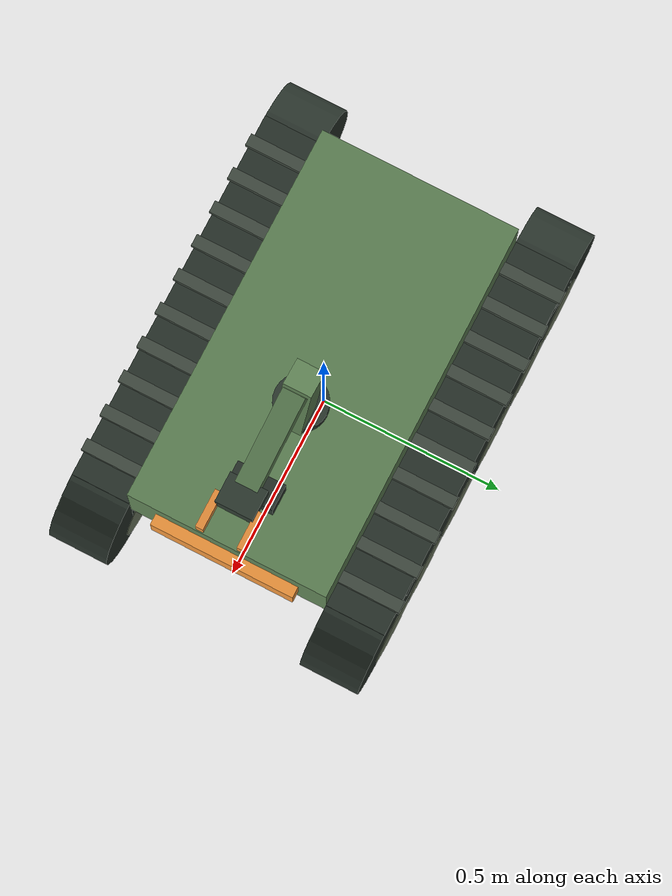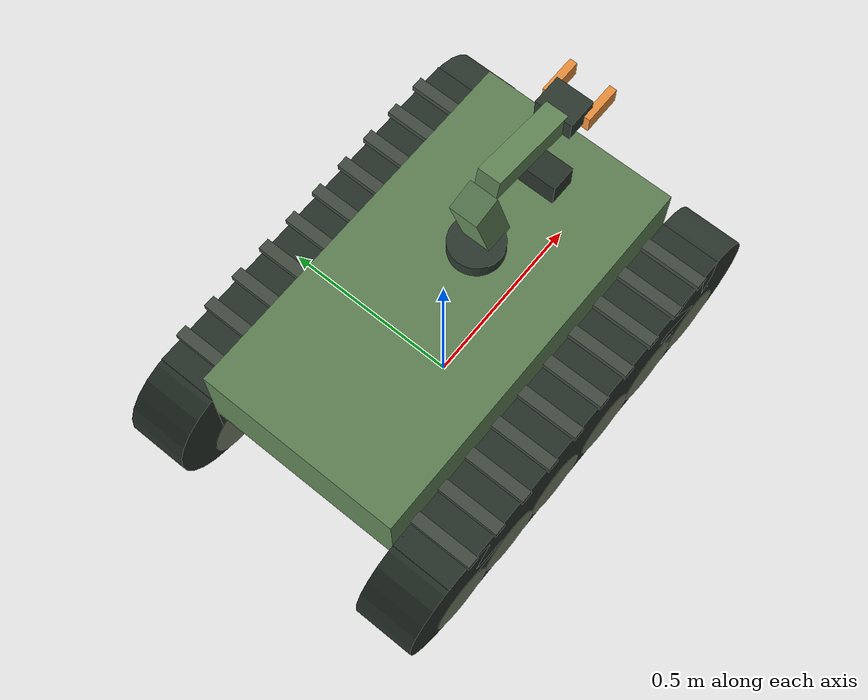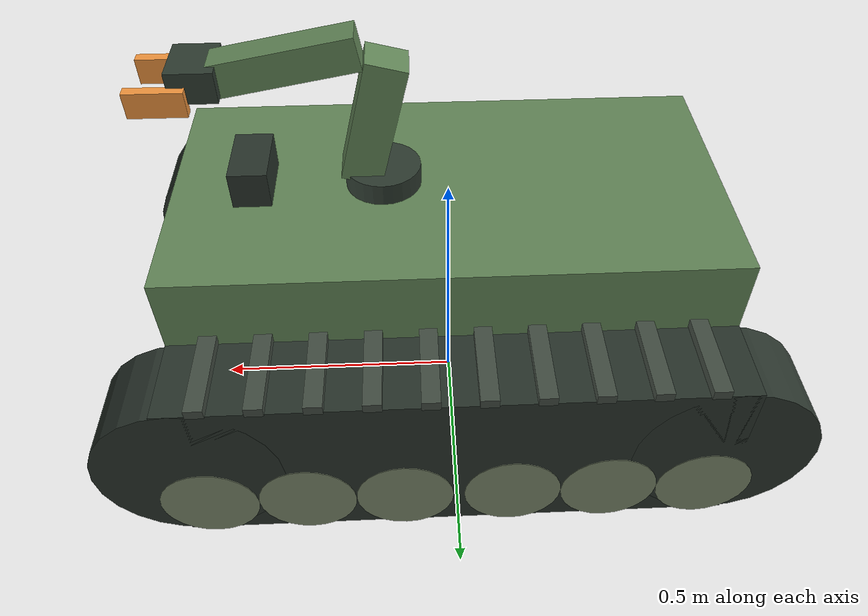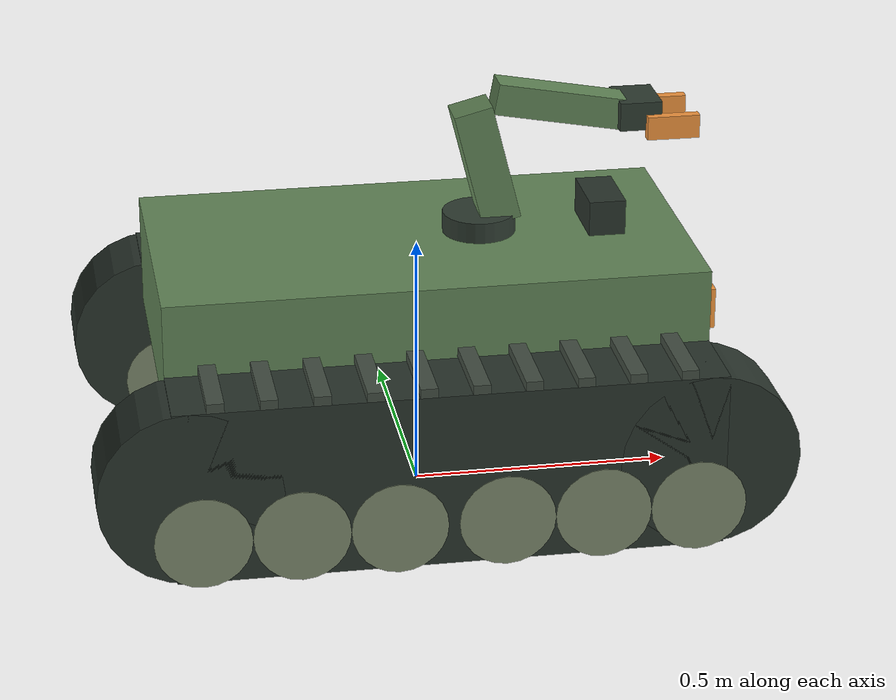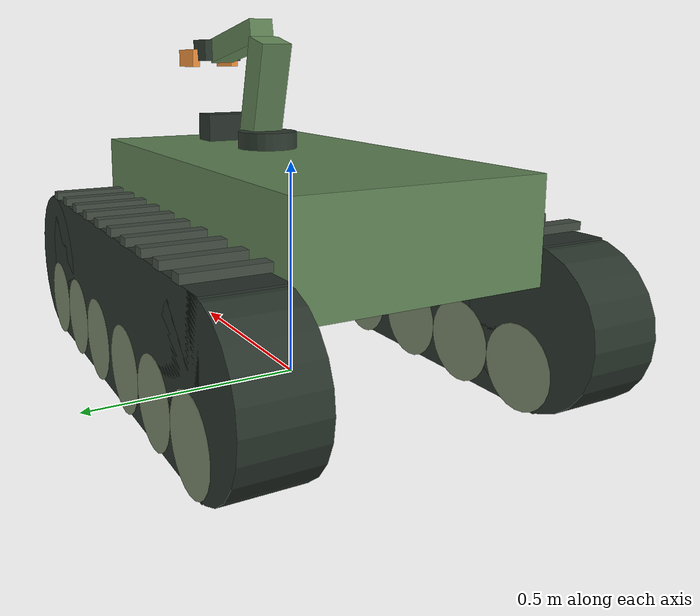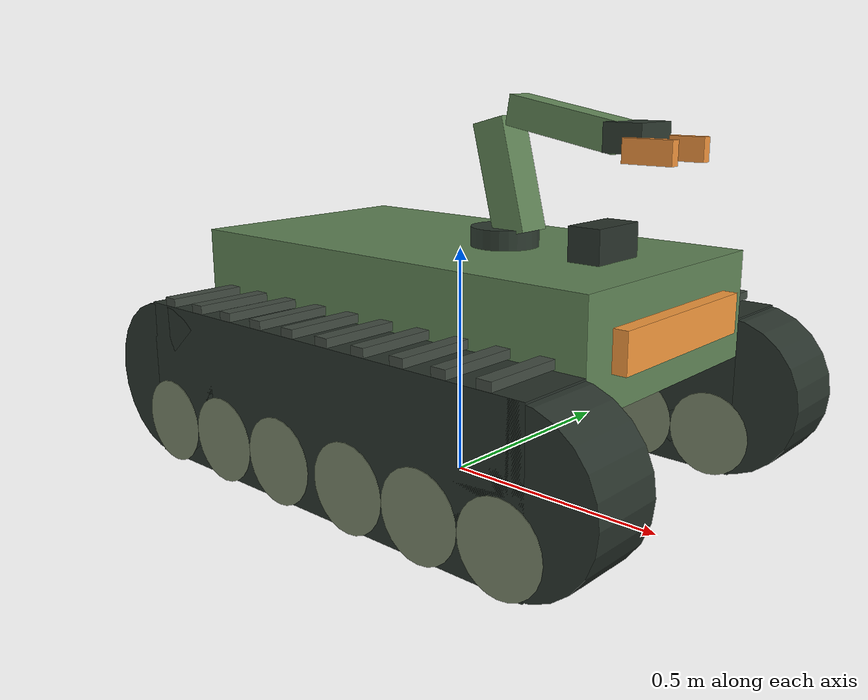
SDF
<?xml version='1.0' encoding='utf-8'?>
<sdf version="1.10">
  <model name="robot">
    <static>false</static>
    <link name="base_link">
      <inertial>
        <mass>48.4</mass>
        <pose>0 0 0.37 0 0 0</pose>
        <inertia>
          <ixx>1.3713333333333333</ixx>
          <iyy>4.391493333333333</iyy>
          <izz>5.3724</izz>
        </inertia>
      </inertial>
      <collision name="body_collision">
        <pose>0 0 0.41 0 0 0</pose>
        <geometry>
          <box>
            <size>0.8 0.46 0.18</size>
          </box>
        </geometry>
        <surface>
          <friction>
            <ode>
              <mu>0.6</mu>
              <mu2>0.6</mu2>
            </ode>
          </friction>
        </surface>
      </collision>
      <visual name="body">
        <pose>0 0 0.41 0 0 0</pose>
        <geometry>
          <box>
            <size>1.02 0.54 0.22</size>
          </box>
        </geometry>
        <material>
          <diffuse>0.38 0.52 0.34 1</diffuse>
        </material>
      </visual>
      <visual name="front_marker">
        <pose>0.52 0 0.41 0 0 0</pose>
        <geometry>
          <box>
            <size>0.04 0.38880000000000003 0.08</size>
          </box>
        </geometry>
        <material>
          <diffuse>0.96 0.6 0.24 1</diffuse>
        </material>
      </visual>
      <visual name="camera">
        <pose>0.357 0 0.5529999999999999 0 0 0</pose>
        <geometry>
          <box>
            <size>0.07 0.13 0.07</size>
          </box>
        </geometry>
        <material>
          <diffuse>0.16 0.2 0.17 1</diffuse>
        </material>
      </visual>
      <visual name="left_track_envelope">
        <pose>0 0.35 0.21 0 0 0</pose>
        <geometry>
          <box>
            <size>1.02 0.16 0.34</size>
          </box>
        </geometry>
        <material>
          <diffuse>0.16 0.2 0.17 1</diffuse>
        </material>
      </visual>
      <visual name="left_rear_idler_visual">
        <pose>-0.48 0.35 0.21 1.5707963267948966 0 0</pose>
        <geometry>
          <cylinder>
            <radius>0.17</radius>
            <length>0.16</length>
          </cylinder>
        </geometry>
        <material>
          <diffuse>0.16 0.2 0.17 1</diffuse>
        </material>
      </visual>
      <visual name="left_front_idler_visual">
        <pose>0.48 0.35 0.21 1.5707963267948966 0 0</pose>
        <geometry>
          <cylinder>
            <radius>0.17</radius>
            <length>0.16</length>
          </cylinder>
        </geometry>
        <material>
          <diffuse>0.16 0.2 0.17 1</diffuse>
        </material>
      </visual>
      <visual name="left_tread_0">
        <pose>-0.432 0.35 0.392 0 0 0</pose>
        <geometry>
          <box>
            <size>0.032 0.1728 0.018</size>
          </box>
        </geometry>
        <material>
          <diffuse>0.26 0.3 0.26 1</diffuse>
        </material>
      </visual>
      <visual name="left_tread_1">
        <pose>-0.33599999999999997 0.35 0.392 0 0 0</pose>
        <geometry>
          <box>
            <size>0.032 0.1728 0.018</size>
          </box>
        </geometry>
        <material>
          <diffuse>0.26 0.3 0.26 1</diffuse>
        </material>
      </visual>
      <visual name="left_tread_2">
        <pose>-0.24 0.35 0.392 0 0 0</pose>
        <geometry>
          <box>
            <size>0.032 0.1728 0.018</size>
          </box>
        </geometry>
        <material>
          <diffuse>0.26 0.3 0.26 1</diffuse>
        </material>
      </visual>
      <visual name="left_tread_3">
        <pose>-0.14400000000000002 0.35 0.392 0 0 0</pose>
        <geometry>
          <box>
            <size>0.032 0.1728 0.018</size>
          </box>
        </geometry>
        <material>
          <diffuse>0.26 0.3 0.26 1</diffuse>
        </material>
      </visual>
      <visual name="left_tread_4">
        <pose>-0.04799999999999993 0.35 0.392 0 0 0</pose>
        <geometry>
          <box>
            <size>0.032 0.1728 0.018</size>
          </box>
        </geometry>
        <material>
          <diffuse>0.26 0.3 0.26 1</diffuse>
        </material>
      </visual>
      <visual name="left_tread_5">
        <pose>0.04799999999999993 0.35 0.392 0 0 0</pose>
        <geometry>
          <box>
            <size>0.032 0.1728 0.018</size>
          </box>
        </geometry>
        <material>
          <diffuse>0.26 0.3 0.26 1</diffuse>
        </material>
      </visual>
      <visual name="left_tread_6">
        <pose>0.14400000000000002 0.35 0.392 0 0 0</pose>
        <geometry>
          <box>
            <size>0.032 0.1728 0.018</size>
          </box>
        </geometry>
        <material>
          <diffuse>0.26 0.3 0.26 1</diffuse>
        </material>
      </visual>
      <visual name="left_tread_7">
        <pose>0.24 0.35 0.392 0 0 0</pose>
        <geometry>
          <box>
            <size>0.032 0.1728 0.018</size>
          </box>
        </geometry>
        <material>
          <diffuse>0.26 0.3 0.26 1</diffuse>
        </material>
      </visual>
      <visual name="left_tread_8">
        <pose>0.3360000000000001 0.35 0.392 0 0 0</pose>
        <geometry>
          <box>
            <size>0.032 0.1728 0.018</size>
          </box>
        </geometry>
        <material>
          <diffuse>0.26 0.3 0.26 1</diffuse>
        </material>
      </visual>
      <visual name="left_tread_9">
        <pose>0.43199999999999994 0.35 0.392 0 0 0</pose>
        <geometry>
          <box>
            <size>0.032 0.1728 0.018</size>
          </box>
        </geometry>
        <material>
          <diffuse>0.26 0.3 0.26 1</diffuse>
        </material>
      </visual>
      <visual name="right_track_envelope">
        <pose>0 -0.35 0.21 0 0 0</pose>
        <geometry>
          <box>
            <size>1.02 0.16 0.34</size>
          </box>
        </geometry>
        <material>
          <diffuse>0.16 0.2 0.17 1</diffuse>
        </material>
      </visual>
      <visual name="right_rear_idler_visual">
        <pose>-0.48 -0.35 0.21 1.5707963267948966 0 0</pose>
        <geometry>
          <cylinder>
            <radius>0.17</radius>
            <length>0.16</length>
          </cylinder>
        </geometry>
        <material>
          <diffuse>0.16 0.2 0.17 1</diffuse>
        </material>
      </visual>
      <visual name="right_front_idler_visual">
        <pose>0.48 -0.35 0.21 1.5707963267948966 0 0</pose>
        <geometry>
          <cylinder>
            <radius>0.17</radius>
            <length>0.16</length>
          </cylinder>
        </geometry>
        <material>
          <diffuse>0.16 0.2 0.17 1</diffuse>
        </material>
      </visual>
      <visual name="right_tread_0">
        <pose>-0.432 -0.35 0.392 0 0 0</pose>
        <geometry>
          <box>
            <size>0.032 0.1728 0.018</size>
          </box>
        </geometry>
        <material>
          <diffuse>0.26 0.3 0.26 1</diffuse>
        </material>
      </visual>
      <visual name="right_tread_1">
        <pose>-0.33599999999999997 -0.35 0.392 0 0 0</pose>
        <geometry>
          <box>
            <size>0.032 0.1728 0.018</size>
          </box>
        </geometry>
        <material>
          <diffuse>0.26 0.3 0.26 1</diffuse>
        </material>
      </visual>
      <visual name="right_tread_2">
        <pose>-0.24 -0.35 0.392 0 0 0</pose>
        <geometry>
          <box>
            <size>0.032 0.1728 0.018</size>
          </box>
        </geometry>
        <material>
          <diffuse>0.26 0.3 0.26 1</diffuse>
        </material>
      </visual>
      <visual name="right_tread_3">
        <pose>-0.14400000000000002 -0.35 0.392 0 0 0</pose>
        <geometry>
          <box>
            <size>0.032 0.1728 0.018</size>
          </box>
        </geometry>
        <material>
          <diffuse>0.26 0.3 0.26 1</diffuse>
        </material>
      </visual>
      <visual name="right_tread_4">
        <pose>-0.04799999999999993 -0.35 0.392 0 0 0</pose>
        <geometry>
          <box>
            <size>0.032 0.1728 0.018</size>
          </box>
        </geometry>
        <material>
          <diffuse>0.26 0.3 0.26 1</diffuse>
        </material>
      </visual>
      <visual name="right_tread_5">
        <pose>0.04799999999999993 -0.35 0.392 0 0 0</pose>
        <geometry>
          <box>
            <size>0.032 0.1728 0.018</size>
          </box>
        </geometry>
        <material>
          <diffuse>0.26 0.3 0.26 1</diffuse>
        </material>
      </visual>
      <visual name="right_tread_6">
        <pose>0.14400000000000002 -0.35 0.392 0 0 0</pose>
        <geometry>
          <box>
            <size>0.032 0.1728 0.018</size>
          </box>
        </geometry>
        <material>
          <diffuse>0.26 0.3 0.26 1</diffuse>
        </material>
      </visual>
      <visual name="right_tread_7">
        <pose>0.24 -0.35 0.392 0 0 0</pose>
        <geometry>
          <box>
            <size>0.032 0.1728 0.018</size>
          </box>
        </geometry>
        <material>
          <diffuse>0.26 0.3 0.26 1</diffuse>
        </material>
      </visual>
      <visual name="right_tread_8">
        <pose>0.3360000000000001 -0.35 0.392 0 0 0</pose>
        <geometry>
          <box>
            <size>0.032 0.1728 0.018</size>
          </box>
        </geometry>
        <material>
          <diffuse>0.26 0.3 0.26 1</diffuse>
        </material>
      </visual>
      <visual name="right_tread_9">
        <pose>0.43199999999999994 -0.35 0.392 0 0 0</pose>
        <geometry>
          <box>
            <size>0.032 0.1728 0.018</size>
          </box>
        </geometry>
        <material>
          <diffuse>0.26 0.3 0.26 1</diffuse>
        </material>
      </visual>
      <visual name="arm_base_0">
        <pose>0.12 0 0.51 0 0 0</pose>
        <geometry>
          <cylinder>
            <radius>0.07</radius>
            <length>0.1</length>
          </cylinder>
        </geometry>
        <material>
          <diffuse>0.18 0.23 0.19 1</diffuse>
        </material>
      </visual>
      <visual name="upper_arm_0">
        <pose>0.13 0 0.66 0 -0.25 0</pose>
        <geometry>
          <box>
            <size>0.075 0.075 0.23</size>
          </box>
        </geometry>
        <material>
          <diffuse>0.38 0.52 0.34 1</diffuse>
        </material>
      </visual>
      <visual name="forearm_0">
        <pose>0.27 0 0.77 0 0.18 0</pose>
        <geometry>
          <box>
            <size>0.25 0.06 0.06</size>
          </box>
        </geometry>
        <material>
          <diffuse>0.38 0.52 0.34 1</diffuse>
        </material>
      </visual>
      <visual name="wrist_0">
        <pose>0.42 0 0.75 0 0 0</pose>
        <geometry>
          <box>
            <size>0.08 0.1 0.055</size>
          </box>
        </geometry>
        <material>
          <diffuse>0.18 0.23 0.19 1</diffuse>
        </material>
      </visual>
      <visual name="jaw_0_-0.055">
        <pose>0.48 -0.055 0.73 0 0 0</pose>
        <geometry>
          <box>
            <size>0.1 0.02 0.045</size>
          </box>
        </geometry>
        <material>
          <diffuse>0.94 0.58 0.24 1</diffuse>
        </material>
      </visual>
      <visual name="jaw_0_0.055">
        <pose>0.48 0.055 0.73 0 0 0</pose>
        <geometry>
          <box>
            <size>0.1 0.02 0.045</size>
          </box>
        </geometry>
        <material>
          <diffuse>0.94 0.58 0.24 1</diffuse>
        </material>
      </visual>
      <sensor name="imu" type="imu">
        <always_on>true</always_on>
        <update_rate>50</update_rate>
        <topic>/garden/imu</topic>
        <imu />
      </sensor>
    </link>
    <link name="left_carrier_0">
      <pose>-0.46 0.35 0.12 0 0 0</pose>
      <inertial>
        <mass>0.06</mass>
        <pose>0 0 0 0 0 0</pose>
        <inertia>
          <ixx>9e-06</ixx>
          <iyy>9e-06</iyy>
          <izz>9e-06</izz>
        </inertia>
      </inertial>
    </link>
    <joint name="left_suspension_0" type="prismatic">
      <parent>base_link</parent>
      <child>left_carrier_0</child>
      <axis>
        <xyz>0 0 1</xyz>
        <limit>
          <lower>-0.08</lower>
          <upper>0.08</upper>
          <effort>2500</effort>
          <velocity>1.5</velocity>
        </limit>
        <dynamics>
          <damping>150</damping>
          <spring_reference>0</spring_reference>
          <spring_stiffness>7600</spring_stiffness>
        </dynamics>
      </axis>
    </joint>
    <link name="left_wheel">
      <pose>-0.46 0.35 0.12 1.5707963267948966 0 0</pose>
      <inertial>
        <mass>1.35</mass>
        <inertia>
          <ixx>0.0064800000000000005</ixx>
          <iyy>0.0064800000000000005</iyy>
          <izz>0.00972</izz>
        </inertia>
      </inertial>
      <collision name="wheel_collision">
        <pose>0 0 0 0 0 0</pose>
        <geometry>
          <cylinder>
            <radius>0.12</radius>
            <length>0.12</length>
          </cylinder>
        </geometry>
        <surface>
          <friction>
            <ode>
              <mu>0.92</mu>
              <mu2>0.92</mu2>
            </ode>
          </friction>
        </surface>
      </collision>
      <visual name="roller">
        <pose>0 0 0 0 0 0</pose>
        <geometry>
          <cylinder>
            <radius>0.09</radius>
            <length>0.162</length>
          </cylinder>
        </geometry>
        <material>
          <diffuse>0.48 0.53 0.42 1</diffuse>
        </material>
      </visual>
    </link>
    <joint name="left_joint" type="revolute">
      <parent>left_carrier_0</parent>
      <child>left_wheel</child>
      <axis>
        <xyz>0 0 -1</xyz>
        <limit>
          <effort>55.0</effort>
          <velocity>9.0</velocity>
        </limit>
      </axis>
    </joint>
    <link name="left_carrier_1">
      <pose>-0.28 0.35 0.12 0 0 0</pose>
      <inertial>
        <mass>0.06</mass>
        <pose>0 0 0 0 0 0</pose>
        <inertia>
          <ixx>9e-06</ixx>
          <iyy>9e-06</iyy>
          <izz>9e-06</izz>
        </inertia>
      </inertial>
    </link>
    <joint name="left_suspension_1" type="prismatic">
      <parent>base_link</parent>
      <child>left_carrier_1</child>
      <axis>
        <xyz>0 0 1</xyz>
        <limit>
          <lower>-0.08</lower>
          <upper>0.08</upper>
          <effort>2500</effort>
          <velocity>1.5</velocity>
        </limit>
        <dynamics>
          <damping>150</damping>
          <spring_reference>0</spring_reference>
          <spring_stiffness>7600</spring_stiffness>
        </dynamics>
      </axis>
    </joint>
    <link name="left_wheel_1">
      <pose>-0.28 0.35 0.12 1.5707963267948966 0 0</pose>
      <inertial>
        <mass>1.35</mass>
        <inertia>
          <ixx>0.0064800000000000005</ixx>
          <iyy>0.0064800000000000005</iyy>
          <izz>0.00972</izz>
        </inertia>
      </inertial>
      <collision name="wheel_collision">
        <pose>0 0 0 0 0 0</pose>
        <geometry>
          <cylinder>
            <radius>0.12</radius>
            <length>0.12</length>
          </cylinder>
        </geometry>
        <surface>
          <friction>
            <ode>
              <mu>0.92</mu>
              <mu2>0.92</mu2>
            </ode>
          </friction>
        </surface>
      </collision>
      <visual name="roller">
        <pose>0 0 0 0 0 0</pose>
        <geometry>
          <cylinder>
            <radius>0.09</radius>
            <length>0.162</length>
          </cylinder>
        </geometry>
        <material>
          <diffuse>0.48 0.53 0.42 1</diffuse>
        </material>
      </visual>
    </link>
    <joint name="left_joint_1" type="revolute">
      <parent>left_carrier_1</parent>
      <child>left_wheel_1</child>
      <axis>
        <xyz>0 0 -1</xyz>
        <limit>
          <effort>55.0</effort>
          <velocity>9.0</velocity>
        </limit>
      </axis>
    </joint>
    <link name="left_carrier_2">
      <pose>-0.1 0.35 0.12 0 0 0</pose>
      <inertial>
        <mass>0.06</mass>
        <pose>0 0 0 0 0 0</pose>
        <inertia>
          <ixx>9e-06</ixx>
          <iyy>9e-06</iyy>
          <izz>9e-06</izz>
        </inertia>
      </inertial>
    </link>
    <joint name="left_suspension_2" type="prismatic">
      <parent>base_link</parent>
      <child>left_carrier_2</child>
      <axis>
        <xyz>0 0 1</xyz>
        <limit>
          <lower>-0.08</lower>
          <upper>0.08</upper>
          <effort>2500</effort>
          <velocity>1.5</velocity>
        </limit>
        <dynamics>
          <damping>150</damping>
          <spring_reference>0</spring_reference>
          <spring_stiffness>7600</spring_stiffness>
        </dynamics>
      </axis>
    </joint>
    <link name="left_wheel_2">
      <pose>-0.1 0.35 0.12 1.5707963267948966 0 0</pose>
      <inertial>
        <mass>1.35</mass>
        <inertia>
          <ixx>0.0064800000000000005</ixx>
          <iyy>0.0064800000000000005</iyy>
          <izz>0.00972</izz>
        </inertia>
      </inertial>
      <collision name="wheel_collision">
        <pose>0 0 0 0 0 0</pose>
        <geometry>
          <cylinder>
            <radius>0.12</radius>
            <length>0.12</length>
          </cylinder>
        </geometry>
        <surface>
          <friction>
            <ode>
              <mu>0.92</mu>
              <mu2>0.92</mu2>
            </ode>
          </friction>
        </surface>
      </collision>
      <visual name="roller">
        <pose>0 0 0 0 0 0</pose>
        <geometry>
          <cylinder>
            <radius>0.09</radius>
            <length>0.162</length>
          </cylinder>
        </geometry>
        <material>
          <diffuse>0.48 0.53 0.42 1</diffuse>
        </material>
      </visual>
    </link>
    <joint name="left_joint_2" type="revolute">
      <parent>left_carrier_2</parent>
      <child>left_wheel_2</child>
      <axis>
        <xyz>0 0 -1</xyz>
        <limit>
          <effort>55.0</effort>
          <velocity>9.0</velocity>
        </limit>
      </axis>
    </joint>
    <link name="left_carrier_3">
      <pose>0.1 0.35 0.12 0 0 0</pose>
      <inertial>
        <mass>0.06</mass>
        <pose>0 0 0 0 0 0</pose>
        <inertia>
          <ixx>9e-06</ixx>
          <iyy>9e-06</iyy>
          <izz>9e-06</izz>
        </inertia>
      </inertial>
    </link>
    <joint name="left_suspension_3" type="prismatic">
      <parent>base_link</parent>
      <child>left_carrier_3</child>
      <axis>
        <xyz>0 0 1</xyz>
        <limit>
          <lower>-0.08</lower>
          <upper>0.08</upper>
          <effort>2500</effort>
          <velocity>1.5</velocity>
        </limit>
        <dynamics>
          <damping>150</damping>
          <spring_reference>0</spring_reference>
          <spring_stiffness>7600</spring_stiffness>
        </dynamics>
      </axis>
    </joint>
    <link name="left_wheel_3">
      <pose>0.1 0.35 0.12 1.5707963267948966 0 0</pose>
      <inertial>
        <mass>1.35</mass>
        <inertia>
          <ixx>0.0064800000000000005</ixx>
          <iyy>0.0064800000000000005</iyy>
          <izz>0.00972</izz>
        </inertia>
      </inertial>
      <collision name="wheel_collision">
        <pose>0 0 0 0 0 0</pose>
        <geometry>
          <cylinder>
            <radius>0.12</radius>
            <length>0.12</length>
          </cylinder>
        </geometry>
        <surface>
          <friction>
            <ode>
              <mu>0.92</mu>
              <mu2>0.92</mu2>
            </ode>
          </friction>
        </surface>
      </collision>
      <visual name="roller">
        <pose>0 0 0 0 0 0</pose>
        <geometry>
          <cylinder>
            <radius>0.09</radius>
            <length>0.162</length>
          </cylinder>
        </geometry>
        <material>
          <diffuse>0.48 0.53 0.42 1</diffuse>
        </material>
      </visual>
    </link>
    <joint name="left_joint_3" type="revolute">
      <parent>left_carrier_3</parent>
      <child>left_wheel_3</child>
      <axis>
        <xyz>0 0 -1</xyz>
        <limit>
          <effort>55.0</effort>
          <velocity>9.0</velocity>
        </limit>
      </axis>
    </joint>
    <link name="left_carrier_4">
      <pose>0.28 0.35 0.12 0 0 0</pose>
      <inertial>
        <mass>0.06</mass>
        <pose>0 0 0 0 0 0</pose>
        <inertia>
          <ixx>9e-06</ixx>
          <iyy>9e-06</iyy>
          <izz>9e-06</izz>
        </inertia>
      </inertial>
    </link>
    <joint name="left_suspension_4" type="prismatic">
      <parent>base_link</parent>
      <child>left_carrier_4</child>
      <axis>
        <xyz>0 0 1</xyz>
        <limit>
          <lower>-0.08</lower>
          <upper>0.08</upper>
          <effort>2500</effort>
          <velocity>1.5</velocity>
        </limit>
        <dynamics>
          <damping>150</damping>
          <spring_reference>0</spring_reference>
          <spring_stiffness>7600</spring_stiffness>
        </dynamics>
      </axis>
    </joint>
    <link name="left_wheel_4">
      <pose>0.28 0.35 0.12 1.5707963267948966 0 0</pose>
      <inertial>
        <mass>1.35</mass>
        <inertia>
          <ixx>0.0064800000000000005</ixx>
          <iyy>0.0064800000000000005</iyy>
          <izz>0.00972</izz>
        </inertia>
      </inertial>
      <collision name="wheel_collision">
        <pose>0 0 0 0 0 0</pose>
        <geometry>
          <cylinder>
            <radius>0.12</radius>
            <length>0.12</length>
          </cylinder>
        </geometry>
        <surface>
          <friction>
            <ode>
              <mu>0.92</mu>
              <mu2>0.92</mu2>
            </ode>
          </friction>
        </surface>
      </collision>
      <visual name="roller">
        <pose>0 0 0 0 0 0</pose>
        <geometry>
          <cylinder>
            <radius>0.09</radius>
            <length>0.162</length>
          </cylinder>
        </geometry>
        <material>
          <diffuse>0.48 0.53 0.42 1</diffuse>
        </material>
      </visual>
    </link>
    <joint name="left_joint_4" type="revolute">
      <parent>left_carrier_4</parent>
      <child>left_wheel_4</child>
      <axis>
        <xyz>0 0 -1</xyz>
        <limit>
          <effort>55.0</effort>
          <velocity>9.0</velocity>
        </limit>
      </axis>
    </joint>
    <link name="left_carrier_5">
      <pose>0.46 0.35 0.12 0 0 0</pose>
      <inertial>
        <mass>0.06</mass>
        <pose>0 0 0 0 0 0</pose>
        <inertia>
          <ixx>9e-06</ixx>
          <iyy>9e-06</iyy>
          <izz>9e-06</izz>
        </inertia>
      </inertial>
    </link>
    <joint name="left_suspension_5" type="prismatic">
      <parent>base_link</parent>
      <child>left_carrier_5</child>
      <axis>
        <xyz>0 0 1</xyz>
        <limit>
          <lower>-0.08</lower>
          <upper>0.08</upper>
          <effort>2500</effort>
          <velocity>1.5</velocity>
        </limit>
        <dynamics>
          <damping>150</damping>
          <spring_reference>0</spring_reference>
          <spring_stiffness>7600</spring_stiffness>
        </dynamics>
      </axis>
    </joint>
    <link name="left_wheel_5">
      <pose>0.46 0.35 0.12 1.5707963267948966 0 0</pose>
      <inertial>
        <mass>1.35</mass>
        <inertia>
          <ixx>0.0064800000000000005</ixx>
          <iyy>0.0064800000000000005</iyy>
          <izz>0.00972</izz>
        </inertia>
      </inertial>
      <collision name="wheel_collision">
        <pose>0 0 0 0 0 0</pose>
        <geometry>
          <cylinder>
            <radius>0.12</radius>
            <length>0.12</length>
          </cylinder>
        </geometry>
        <surface>
          <friction>
            <ode>
              <mu>0.92</mu>
              <mu2>0.92</mu2>
            </ode>
          </friction>
        </surface>
      </collision>
      <visual name="roller">
        <pose>0 0 0 0 0 0</pose>
        <geometry>
          <cylinder>
            <radius>0.09</radius>
            <length>0.162</length>
          </cylinder>
        </geometry>
        <material>
          <diffuse>0.48 0.53 0.42 1</diffuse>
        </material>
      </visual>
    </link>
    <joint name="left_joint_5" type="revolute">
      <parent>left_carrier_5</parent>
      <child>left_wheel_5</child>
      <axis>
        <xyz>0 0 -1</xyz>
        <limit>
          <effort>55.0</effort>
          <velocity>9.0</velocity>
        </limit>
      </axis>
    </joint>
    <link name="right_carrier_0">
      <pose>-0.46 -0.35 0.12 0 0 0</pose>
      <inertial>
        <mass>0.06</mass>
        <pose>0 0 0 0 0 0</pose>
        <inertia>
          <ixx>9e-06</ixx>
          <iyy>9e-06</iyy>
          <izz>9e-06</izz>
        </inertia>
      </inertial>
    </link>
    <joint name="right_suspension_0" type="prismatic">
      <parent>base_link</parent>
      <child>right_carrier_0</child>
      <axis>
        <xyz>0 0 1</xyz>
        <limit>
          <lower>-0.08</lower>
          <upper>0.08</upper>
          <effort>2500</effort>
          <velocity>1.5</velocity>
        </limit>
        <dynamics>
          <damping>150</damping>
          <spring_reference>0</spring_reference>
          <spring_stiffness>7600</spring_stiffness>
        </dynamics>
      </axis>
    </joint>
    <link name="right_wheel">
      <pose>-0.46 -0.35 0.12 1.5707963267948966 0 0</pose>
      <inertial>
        <mass>1.35</mass>
        <inertia>
          <ixx>0.0064800000000000005</ixx>
          <iyy>0.0064800000000000005</iyy>
          <izz>0.00972</izz>
        </inertia>
      </inertial>
      <collision name="wheel_collision">
        <pose>0 0 0 0 0 0</pose>
        <geometry>
          <cylinder>
            <radius>0.12</radius>
            <length>0.12</length>
          </cylinder>
        </geometry>
        <surface>
          <friction>
            <ode>
              <mu>0.92</mu>
              <mu2>0.92</mu2>
            </ode>
          </friction>
        </surface>
      </collision>
      <visual name="roller">
        <pose>0 0 0 0 0 0</pose>
        <geometry>
          <cylinder>
            <radius>0.09</radius>
            <length>0.162</length>
          </cylinder>
        </geometry>
        <material>
          <diffuse>0.48 0.53 0.42 1</diffuse>
        </material>
      </visual>
    </link>
    <joint name="right_joint" type="revolute">
      <parent>right_carrier_0</parent>
      <child>right_wheel</child>
      <axis>
        <xyz>0 0 -1</xyz>
        <limit>
          <effort>55.0</effort>
          <velocity>9.0</velocity>
        </limit>
      </axis>
    </joint>
    <link name="right_carrier_1">
      <pose>-0.28 -0.35 0.12 0 0 0</pose>
      <inertial>
        <mass>0.06</mass>
        <pose>0 0 0 0 0 0</pose>
        <inertia>
          <ixx>9e-06</ixx>
          <iyy>9e-06</iyy>
          <izz>9e-06</izz>
        </inertia>
      </inertial>
    </link>
    <joint name="right_suspension_1" type="prismatic">
      <parent>base_link</parent>
      <child>right_carrier_1</child>
      <axis>
        <xyz>0 0 1</xyz>
        <limit>
          <lower>-0.08</lower>
          <upper>0.08</upper>
          <effort>2500</effort>
          <velocity>1.5</velocity>
        </limit>
        <dynamics>
          <damping>150</damping>
          <spring_reference>0</spring_reference>
          <spring_stiffness>7600</spring_stiffness>
        </dynamics>
      </axis>
    </joint>
    <link name="right_wheel_1">
      <pose>-0.28 -0.35 0.12 1.5707963267948966 0 0</pose>
      <inertial>
        <mass>1.35</mass>
        <inertia>
          <ixx>0.0064800000000000005</ixx>
          <iyy>0.0064800000000000005</iyy>
          <izz>0.00972</izz>
        </inertia>
      </inertial>
      <collision name="wheel_collision">
        <pose>0 0 0 0 0 0</pose>
        <geometry>
          <cylinder>
            <radius>0.12</radius>
            <length>0.12</length>
          </cylinder>
        </geometry>
        <surface>
          <friction>
            <ode>
              <mu>0.92</mu>
              <mu2>0.92</mu2>
            </ode>
          </friction>
        </surface>
      </collision>
      <visual name="roller">
        <pose>0 0 0 0 0 0</pose>
        <geometry>
          <cylinder>
            <radius>0.09</radius>
            <length>0.162</length>
          </cylinder>
        </geometry>
        <material>
          <diffuse>0.48 0.53 0.42 1</diffuse>
        </material>
      </visual>
    </link>
    <joint name="right_joint_1" type="revolute">
      <parent>right_carrier_1</parent>
      <child>right_wheel_1</child>
      <axis>
        <xyz>0 0 -1</xyz>
        <limit>
          <effort>55.0</effort>
          <velocity>9.0</velocity>
        </limit>
      </axis>
    </joint>
    <link name="right_carrier_2">
      <pose>-0.1 -0.35 0.12 0 0 0</pose>
      <inertial>
        <mass>0.06</mass>
        <pose>0 0 0 0 0 0</pose>
        <inertia>
          <ixx>9e-06</ixx>
          <iyy>9e-06</iyy>
          <izz>9e-06</izz>
        </inertia>
      </inertial>
    </link>
    <joint name="right_suspension_2" type="prismatic">
      <parent>base_link</parent>
      <child>right_carrier_2</child>
      <axis>
        <xyz>0 0 1</xyz>
        <limit>
          <lower>-0.08</lower>
          <upper>0.08</upper>
          <effort>2500</effort>
          <velocity>1.5</velocity>
        </limit>
        <dynamics>
          <damping>150</damping>
          <spring_reference>0</spring_reference>
          <spring_stiffness>7600</spring_stiffness>
        </dynamics>
      </axis>
    </joint>
    <link name="right_wheel_2">
      <pose>-0.1 -0.35 0.12 1.5707963267948966 0 0</pose>
      <inertial>
        <mass>1.35</mass>
        <inertia>
          <ixx>0.0064800000000000005</ixx>
          <iyy>0.0064800000000000005</iyy>
          <izz>0.00972</izz>
        </inertia>
      </inertial>
      <collision name="wheel_collision">
        <pose>0 0 0 0 0 0</pose>
        <geometry>
          <cylinder>
            <radius>0.12</radius>
            <length>0.12</length>
          </cylinder>
        </geometry>
        <surface>
          <friction>
            <ode>
              <mu>0.92</mu>
              <mu2>0.92</mu2>
            </ode>
          </friction>
        </surface>
      </collision>
      <visual name="roller">
        <pose>0 0 0 0 0 0</pose>
        <geometry>
          <cylinder>
            <radius>0.09</radius>
            <length>0.162</length>
          </cylinder>
        </geometry>
        <material>
          <diffuse>0.48 0.53 0.42 1</diffuse>
        </material>
      </visual>
    </link>
    <joint name="right_joint_2" type="revolute">
      <parent>right_carrier_2</parent>
      <child>right_wheel_2</child>
      <axis>
        <xyz>0 0 -1</xyz>
        <limit>
          <effort>55.0</effort>
          <velocity>9.0</velocity>
        </limit>
      </axis>
    </joint>
    <link name="right_carrier_3">
      <pose>0.1 -0.35 0.12 0 0 0</pose>
      <inertial>
        <mass>0.06</mass>
        <pose>0 0 0 0 0 0</pose>
        <inertia>
          <ixx>9e-06</ixx>
          <iyy>9e-06</iyy>
          <izz>9e-06</izz>
        </inertia>
      </inertial>
    </link>
    <joint name="right_suspension_3" type="prismatic">
      <parent>base_link</parent>
      <child>right_carrier_3</child>
      <axis>
        <xyz>0 0 1</xyz>
        <limit>
          <lower>-0.08</lower>
          <upper>0.08</upper>
          <effort>2500</effort>
          <velocity>1.5</velocity>
        </limit>
        <dynamics>
          <damping>150</damping>
          <spring_reference>0</spring_reference>
          <spring_stiffness>7600</spring_stiffness>
        </dynamics>
      </axis>
    </joint>
    <link name="right_wheel_3">
      <pose>0.1 -0.35 0.12 1.5707963267948966 0 0</pose>
      <inertial>
        <mass>1.35</mass>
        <inertia>
          <ixx>0.0064800000000000005</ixx>
          <iyy>0.0064800000000000005</iyy>
          <izz>0.00972</izz>
        </inertia>
      </inertial>
      <collision name="wheel_collision">
        <pose>0 0 0 0 0 0</pose>
        <geometry>
          <cylinder>
            <radius>0.12</radius>
            <length>0.12</length>
          </cylinder>
        </geometry>
        <surface>
          <friction>
            <ode>
              <mu>0.92</mu>
              <mu2>0.92</mu2>
            </ode>
          </friction>
        </surface>
      </collision>
      <visual name="roller">
        <pose>0 0 0 0 0 0</pose>
        <geometry>
          <cylinder>
            <radius>0.09</radius>
            <length>0.162</length>
          </cylinder>
        </geometry>
        <material>
          <diffuse>0.48 0.53 0.42 1</diffuse>
        </material>
      </visual>
    </link>
    <joint name="right_joint_3" type="revolute">
      <parent>right_carrier_3</parent>
      <child>right_wheel_3</child>
      <axis>
        <xyz>0 0 -1</xyz>
        <limit>
          <effort>55.0</effort>
          <velocity>9.0</velocity>
        </limit>
      </axis>
    </joint>
    <link name="right_carrier_4">
      <pose>0.28 -0.35 0.12 0 0 0</pose>
      <inertial>
        <mass>0.06</mass>
        <pose>0 0 0 0 0 0</pose>
        <inertia>
          <ixx>9e-06</ixx>
          <iyy>9e-06</iyy>
          <izz>9e-06</izz>
        </inertia>
      </inertial>
    </link>
    <joint name="right_suspension_4" type="prismatic">
      <parent>base_link</parent>
      <child>right_carrier_4</child>
      <axis>
        <xyz>0 0 1</xyz>
        <limit>
          <lower>-0.08</lower>
          <upper>0.08</upper>
          <effort>2500</effort>
          <velocity>1.5</velocity>
        </limit>
        <dynamics>
          <damping>150</damping>
          <spring_reference>0</spring_reference>
          <spring_stiffness>7600</spring_stiffness>
        </dynamics>
      </axis>
    </joint>
    <link name="right_wheel_4">
      <pose>0.28 -0.35 0.12 1.5707963267948966 0 0</pose>
      <inertial>
        <mass>1.35</mass>
        <inertia>
          <ixx>0.0064800000000000005</ixx>
          <iyy>0.0064800000000000005</iyy>
          <izz>0.00972</izz>
        </inertia>
      </inertial>
      <collision name="wheel_collision">
        <pose>0 0 0 0 0 0</pose>
        <geometry>
          <cylinder>
            <radius>0.12</radius>
            <length>0.12</length>
          </cylinder>
        </geometry>
        <surface>
          <friction>
            <ode>
              <mu>0.92</mu>
              <mu2>0.92</mu2>
            </ode>
          </friction>
        </surface>
      </collision>
      <visual name="roller">
        <pose>0 0 0 0 0 0</pose>
        <geometry>
          <cylinder>
            <radius>0.09</radius>
            <length>0.162</length>
          </cylinder>
        </geometry>
        <material>
          <diffuse>0.48 0.53 0.42 1</diffuse>
        </material>
      </visual>
    </link>
    <joint name="right_joint_4" type="revolute">
      <parent>right_carrier_4</parent>
      <child>right_wheel_4</child>
      <axis>
        <xyz>0 0 -1</xyz>
        <limit>
          <effort>55.0</effort>
          <velocity>9.0</velocity>
        </limit>
      </axis>
    </joint>
    <link name="right_carrier_5">
      <pose>0.46 -0.35 0.12 0 0 0</pose>
      <inertial>
        <mass>0.06</mass>
        <pose>0 0 0 0 0 0</pose>
        <inertia>
          <ixx>9e-06</ixx>
          <iyy>9e-06</iyy>
          <izz>9e-06</izz>
        </inertia>
      </inertial>
    </link>
    <joint name="right_suspension_5" type="prismatic">
      <parent>base_link</parent>
      <child>right_carrier_5</child>
      <axis>
        <xyz>0 0 1</xyz>
        <limit>
          <lower>-0.08</lower>
          <upper>0.08</upper>
          <effort>2500</effort>
          <velocity>1.5</velocity>
        </limit>
        <dynamics>
          <damping>150</damping>
          <spring_reference>0</spring_reference>
          <spring_stiffness>7600</spring_stiffness>
        </dynamics>
      </axis>
    </joint>
    <link name="right_wheel_5">
      <pose>0.46 -0.35 0.12 1.5707963267948966 0 0</pose>
      <inertial>
        <mass>1.35</mass>
        <inertia>
          <ixx>0.0064800000000000005</ixx>
          <iyy>0.0064800000000000005</iyy>
          <izz>0.00972</izz>
        </inertia>
      </inertial>
      <collision name="wheel_collision">
        <pose>0 0 0 0 0 0</pose>
        <geometry>
          <cylinder>
            <radius>0.12</radius>
            <length>0.12</length>
          </cylinder>
        </geometry>
        <surface>
          <friction>
            <ode>
              <mu>0.92</mu>
              <mu2>0.92</mu2>
            </ode>
          </friction>
        </surface>
      </collision>
      <visual name="roller">
        <pose>0 0 0 0 0 0</pose>
        <geometry>
          <cylinder>
            <radius>0.09</radius>
            <length>0.162</length>
          </cylinder>
        </geometry>
        <material>
          <diffuse>0.48 0.53 0.42 1</diffuse>
        </material>
      </visual>
    </link>
    <joint name="right_joint_5" type="revolute">
      <parent>right_carrier_5</parent>
      <child>right_wheel_5</child>
      <axis>
        <xyz>0 0 -1</xyz>
        <limit>
          <effort>55.0</effort>
          <velocity>9.0</velocity>
        </limit>
      </axis>
    </joint>
    <plugin filename="gz-sim-diff-drive-system" name="gz::sim::systems::DiffDrive">
      <left_joint>left_joint</left_joint>
      <left_joint>left_joint_1</left_joint>
      <left_joint>left_joint_2</left_joint>
      <left_joint>left_joint_3</left_joint>
      <left_joint>left_joint_4</left_joint>
      <left_joint>left_joint_5</left_joint>
      <right_joint>right_joint</right_joint>
      <right_joint>right_joint_1</right_joint>
      <right_joint>right_joint_2</right_joint>
      <right_joint>right_joint_3</right_joint>
      <right_joint>right_joint_4</right_joint>
      <right_joint>right_joint_5</right_joint>
      <wheel_separation>0.7</wheel_separation>
      <wheel_radius>0.12</wheel_radius>
      <topic>/garden/cmd_vel</topic>
      <odom_topic>/garden/odom</odom_topic>
      <frame_id>odom</frame_id>
      <child_frame_id>base_link</child_frame_id>
      <odom_publish_frequency>30</odom_publish_frequency>
      <min_linear_velocity>-0.35</min_linear_velocity>
      <max_linear_velocity>0.35</max_linear_velocity>
      <min_angular_velocity>-0.9</min_angular_velocity>
      <max_angular_velocity>0.9</max_angular_velocity>
      <min_linear_acceleration>-0.6</min_linear_acceleration>
      <max_linear_acceleration>0.6</max_linear_acceleration>
      <min_angular_acceleration>-1.5</min_angular_acceleration>
      <max_angular_acceleration>1.5</max_angular_acceleration>
    </plugin>
    <plugin filename="gz-sim-joint-state-publisher-system" name="gz::sim::systems::JointStatePublisher">
      <topic>/garden/joint_states</topic>
      <joint_name>left_joint</joint_name>
      <joint_name>left_joint_1</joint_name>
      <joint_name>left_joint_2</joint_name>
      <joint_name>left_joint_3</joint_name>
      <joint_name>left_joint_4</joint_name>
      <joint_name>left_joint_5</joint_name>
      <joint_name>right_joint</joint_name>
      <joint_name>right_joint_1</joint_name>
      <joint_name>right_joint_2</joint_name>
      <joint_name>right_joint_3</joint_name>
      <joint_name>right_joint_4</joint_name>
      <joint_name>right_joint_5</joint_name>
      <update_rate>100</update_rate>
    </plugin>
    <plugin filename="gz-sim-pose-publisher-system" name="gz::sim::systems::PosePublisher">
      <publish_model_pose>true</publish_model_pose>
      <publish_link_pose>true</publish_link_pose>
      <publish_visual_pose>false</publish_visual_pose>
      <publish_collision_pose>false</publish_collision_pose>
      <publish_sensor_pose>false</publish_sensor_pose>
      <use_pose_vector_msg>true</use_pose_vector_msg>
      <update_frequency>20</update_frequency>
    </plugin>
  </model>
</sdf>
